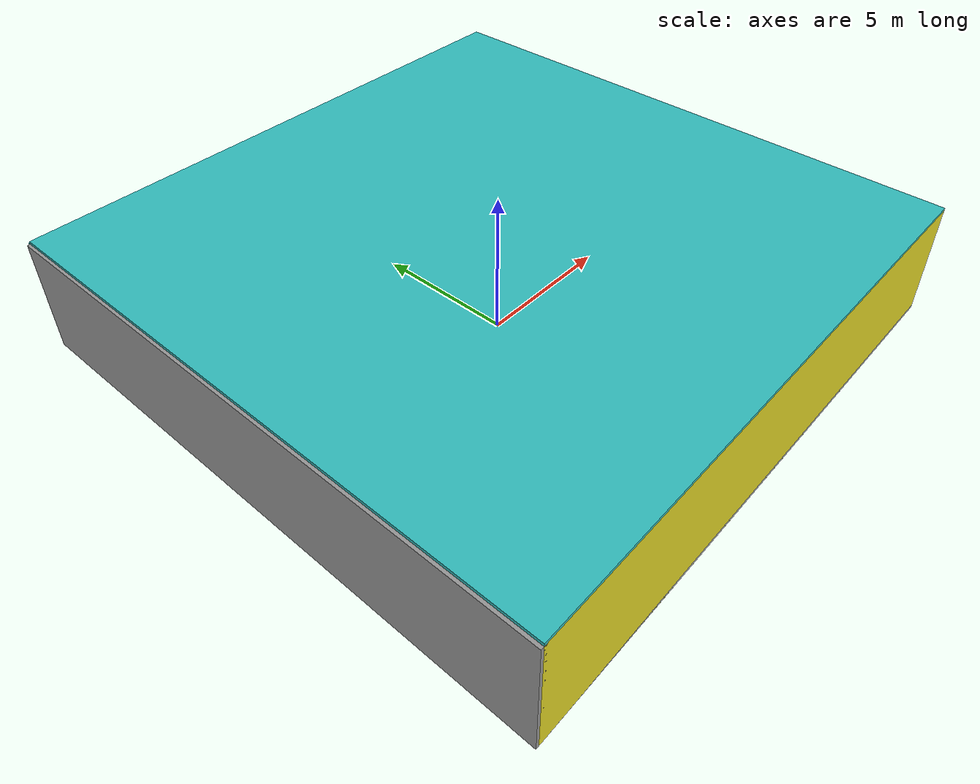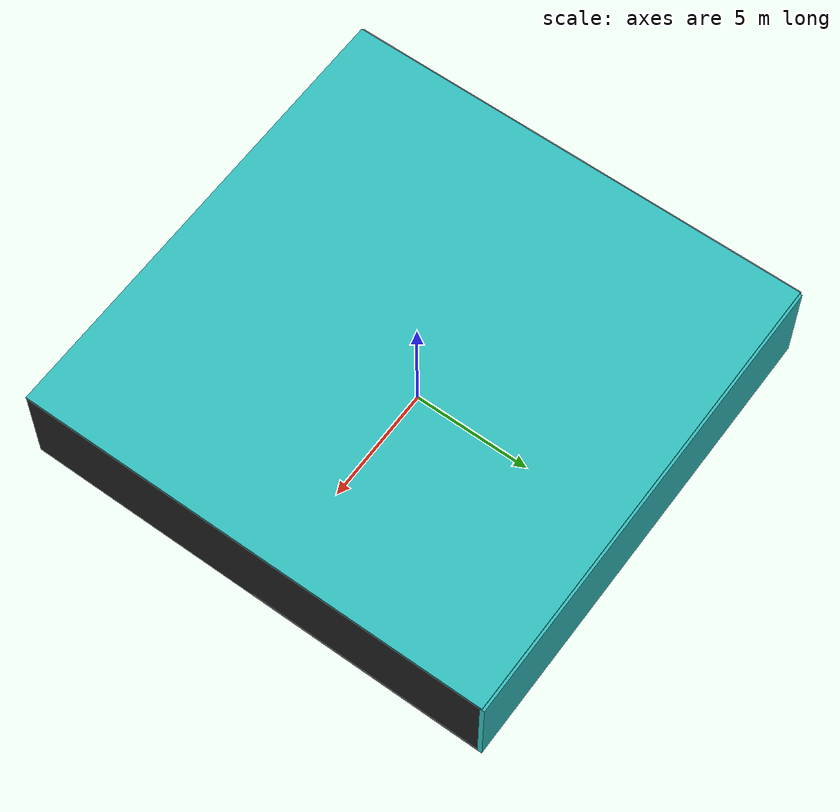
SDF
<sdf version="1.4">
 <world name="default">
  <physics type="ode">
   <max_step_size>0.001</max_step_size>
   <real_time_factor>1</real_time_factor>
   <real_time_update_rate>1000</real_time_update_rate>
   <gravity>0 0 -9.8</gravity>
  </physics>
  <scene><ambient>0.4 0.4 0.4 1</ambient><background>0.7 0.7 0.7 1</background><shadows>1</shadows></scene>
  <model name="Surrounding">
   <static>1</static>
   <link name="Ceiling">
    <collision name="Ceiling_Collision"><geometry><box><size>20 20 0.1</size></box></geometry></collision>
    <visual name="Ceiling_Visual">
     <geometry><box><size>20 20 0.1</size></box></geometry>
     <material>
      <script><uri>file://media/materials/scripts/gazebo.material</uri><name>Gazebo/TurquoiseGlow</name></script>
     </material>
    </visual>
    <pose>0 0 4.05 0 0 0</pose>
   </link>
   <link name="Wall_South">
    <collision name="Wall_South_Collision">
     <geometry><box><size>20 0 4</size></box></geometry>
     <pose>0 0 2 0 -0 0</pose>
    </collision>
    <visual name="Wall_South_Visual">
     <pose>0 0 2 0 -0 0</pose>
     <geometry><box><size>20 0 4</size></box></geometry>
     <material>
      <script><uri>file://media/materials/scripts/gazebo.material</uri><name>Gazebo/YellowGlow</name></script>
     </material>
    </visual>
    <velocity_decay><linear>0</linear><angular>0</angular></velocity_decay>
    <pose>0 -10 0 0 -0 0</pose>
   </link>
   <link name="Wall_East">
    <collision name="Wall_21_Collision">
     <geometry><box><size>20 0 4</size></box></geometry>
     <pose>0 0 2 0 -0 0</pose>
    </collision>
    <visual name="Wall_21_Visual">
     <pose>0 0 2 0 -0 0</pose>
     <geometry><box><size>20 0 4</size></box></geometry>
     <material>
      <script><uri>file://media/materials/scripts/gazebo.material</uri><name>Gazebo/Black</name></script>
     </material>
    </visual>
    <velocity_decay><linear>0</linear><angular>0</angular></velocity_decay>
    <pose>10 0 0 0 -0 1.5708</pose>
   </link>
   <link name="Wall_North">
    <collision name="Wall_22_Collision">
     <geometry><box><size>20 0.2 4</size></box></geometry>
     <pose>0 0 2 0 -0 0</pose>
    </collision>
    <visual name="Wall_22_Visual">
     <pose>0 0 2 0 -0 0</pose>
     <geometry><box><size>20 0.2 4</size></box></geometry>
     <material>
      <script><uri>file://media/materials/scripts/gazebo.material</uri><name>Gazebo/TurquoiseGlow</name></script>
     </material>
    </visual>
    <velocity_decay><linear>0</linear><angular>0</angular></velocity_decay>
    <pose>0 10 0 0 -0 0</pose>
   </link>
   <link name="Wall_West">
    <collision name="Wall_23_Collision">
     <geometry><box><size>20 0.2 4</size></box></geometry>
     <pose>0 0 2 0 -0 0</pose>
    </collision>
    <visual name="Wall_23_Visual">
     <pose>0 0 2 0 -0 0</pose>
     <geometry><box><size>20 0.2 4</size></box></geometry>
     <material>
      <script><uri>file://media/materials/scripts/gazebo.material</uri><name>Gazebo/Grey</name></script>
     </material>
    </visual>
    <velocity_decay><linear>0</linear><angular>0</angular></velocity_decay>
    <pose>-10 0 0 0 0 -1.5708</pose>
   </link>
   <link name="Ground_link">
    <collision name="collision">
     <pose>0 0 .05 0 -0 0</pose>
     <geometry><box><size>20 20 0.1</size></box></geometry>
    </collision>
    <visual name="visual">
     <pose>0 0 .05 0 -0 0</pose>
     <geometry><box><size>20 20 0.1</size></box></geometry>
     <material>
      <script><uri>file://media/materials/scripts/gazebo.material</uri><name>Gazebo/LightOff</name></script>
     </material>
    </visual>
   </link>
   <static>1</static>
  </model>
  <spherical_coordinates>
   <surface_model>EARTH_WGS84</surface_model>
   <latitude_deg>0</latitude_deg>
   <longitude_deg>0</longitude_deg>
   <elevation>0</elevation>
   <heading_deg>0</heading_deg>
  </spherical_coordinates>
  <light name="lightball_0" type="diffuse">
   <diffuse>0.8 0.8 0.8 1</diffuse>
   <specular>0.2 0.2 0.2 1</specular>
   <attenuation>
    <range>100</range>
    <constant>0.7</constant>
    <linear>0.01</linear>
    <quadratic>0.001</quadratic>
   </attenuation>
   <direction>-0.5 0.1 -0.9</direction>
   <pose>7.81227269444 1.5995242763 2.12187860287 0 0 0</pose>
  </light>
  <light name="lightball_1" type="diffuse">
   <diffuse>0.8 0.8 0.8 1</diffuse>
   <specular>0.2 0.2 0.2 1</specular>
   <attenuation>
    <range>100</range>
    <constant>0.7</constant>
    <linear>0.01</linear>
    <quadratic>0.001</quadratic>
   </attenuation>
   <direction>-0.5 0.1 -0.9</direction>
   <pose>-3.03453136944 8.11553198451 1.6408394868 0 0 0</pose>
  </light>
  <light name="lightball_2" type="diffuse">
   <diffuse>0.8 0.8 0.8 1</diffuse>
   <specular>0.2 0.2 0.2 1</specular>
   <attenuation>
    <range>100</range>
    <constant>0.7</constant>
    <linear>0.01</linear>
    <quadratic>0.001</quadratic>
   </attenuation>
   <direction>-0.5 0.1 -0.9</direction>
   <pose>8.34679474576 0.991523439872 1.74267015496 0 0 0</pose>
  </light>
  <include><uri>model://cabinet</uri><pose>-8.14033134547 2.1890807774 0 0 0 1.9107267873</pose></include>
  <include>
   <uri>model://construction_cone</uri>
   <pose>-3.84578653515 2.04027017001 0 0 0 2.52217514435</pose>
  </include>
  <include>
   <uri>model://construction_cone</uri>
   <pose>-1.70537489586 0.924250874717 0 0 0 0.544627579776</pose>
  </include>
  <include><uri>model://cabinet</uri><pose>4.32657932049 2.48019460962 0 0 0 2.54778348108</pose></include>
  <include><uri>model://table</uri><pose>6.39845129665 5.60137809237 0 0 0 1.47295870332</pose></include>
  <include>
   <uri>model://robocup_3Dsim_goal</uri>
   <pose>7.38650181209 6.94309141549 0 0 0 0.492511764175</pose>
  </include>
 </world>
</sdf>

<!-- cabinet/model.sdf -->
<sdf version="1.5">
  <model name="cabinet">
    <static>true</static>
    <link name="cabinet_bottom_plate">
      <inertial>
        <pose>0 0 -1 0 0 0</pose>
        <inertia>
          <ixx>2.050000</ixx>
          <ixy>0</ixy>
          <ixz>0</ixz>
          <iyy>2.050000</iyy>
          <iyz>0</iyz>
          <izz>2.050000</izz>
        </inertia>
        <mass>25.000000</mass>
      </inertial>
      <collision name="cabinet_bottom_plate_geom">
        <pose>0 0 0.010000 0 0 0</pose>
        <geometry>
          <box>
            <size>0.450000 0.450000 0.020000</size>
          </box>
        </geometry>
      </collision>
      <visual name="cabinet_bottom_plate_geom_visual">
        <pose>0 0 0.010000 0 0 0</pose>
        <geometry>
          <box>
            <size>0.450000 0.450000 0.020000</size>
          </box>
        </geometry>
        <material>
          <script>
            <uri>model://media/materials/scripts/gazebo.material</uri>
            <name>Gazebo/Wood</name>
          </script>
        </material>
      </visual>
      <collision name="cabinet_bottom_plate_geom_cabinet_back_plate">
        <pose>0.235000 0 0.510000 0 0 0</pose>
        <geometry>
          <box>
            <size>0.020000 0.450000 1.020000</size>
          </box>
        </geometry>
      </collision>
      <visual name="cabinet_bottom_plate_geom_cabinet_back_plate_visual">
        <pose>0.235000 0 0.510000 0 0 0</pose>
        <geometry>
          <box>
            <size>0.020000 0.450000 1.020000</size>
          </box>
        </geometry>
        <material>
          <script>
            <uri>model://media/materials/scripts/gazebo.material</uri>
            <name>Gazebo/Wood</name>
          </script>
        </material>
      </visual>
      <collision name="cabinet_bottom_plate_geom_cabinet_left_plate">
        <pose>0 0.235000 0.510000 0 0 0</pose>
        <geometry>
          <box>
            <size>0.450000 0.020000 1.020000</size>
          </box>
        </geometry>
      </collision>
      <visual name="cabinet_bottom_plate_geom_cabinet_left_plate_visual">
        <pose>0 0.235000 0.510000 0 0 0</pose>
        <geometry>
          <box>
            <size>0.450000 0.020000 1.020000</size>
          </box>
        </geometry>
        <material>
          <script>
            <uri>model://media/materials/scripts/gazebo.material</uri>
            <name>Gazebo/Wood</name>
          </script>
        </material>
      </visual>
      <collision name="cabinet_bottom_plate_geom_cabinet_middle_plate">
        <pose>0 0 0.510000 0 0 0</pose>
        <geometry>
          <box>
            <size>0.450000 0.450000 0.020000</size>
          </box>
        </geometry>
      </collision>
      <visual name="cabinet_bottom_plate_geom_cabinet_middle_plate_visual">
        <pose>0 0 0.510000 0 0 0</pose>
        <geometry>
          <box>
            <size>0.450000 0.450000 0.020000</size>
          </box>
        </geometry>
        <material>
          <script>
            <uri>model://media/materials/scripts/gazebo.material</uri>
            <name>Gazebo/Wood</name>
          </script>
        </material>
      </visual>
      <collision name="cabinet_bottom_plate_geom_cabinet_right_plate">
        <pose>0 -0.235000 0.510000 0 0 0</pose>
        <geometry>
          <box>
            <size>0.450000 0.020000 1.020000</size>
          </box>
        </geometry>
      </collision>
      <visual name="cabinet_bottom_plate_geom_cabinet_right_plate_visual">
        <pose>0 -0.235000 0.510000 0 0 0</pose>
        <geometry>
          <box>
            <size>0.450000 0.020000 1.020000</size>
          </box>
        </geometry>
        <material>
          <script>
            <uri>model://media/materials/scripts/gazebo.material</uri>
            <name>Gazebo/Wood</name>
          </script>
        </material>
      </visual>
      <collision name="cabinet_bottom_plate_geom_cabinet_top_plate">
        <pose>0 0 1.010000 0 0 0</pose>
        <geometry>
          <box>
            <size>0.450000 0.450000 0.020000</size>
          </box>
        </geometry>
      </collision>
      <visual name="cabinet_bottom_plate_geom_cabinet_top_plate_visual">
        <pose>0 0 1.010000 0 0 0</pose>
        <geometry>
          <box>
            <size>0.450000 0.450000 0.020000</size>
          </box>
        </geometry>
        <material>
          <script>
            <uri>model://media/materials/scripts/gazebo.material</uri>
            <name>Gazebo/Wood</name>
          </script>
        </material>
      </visual>
    </link>
  </model>
</sdf>

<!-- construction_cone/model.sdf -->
<sdf version="1.5">
  <model name="Construction Cone">
    <link name="link">
      <collision name="collision">
        <geometry>
          <mesh>
            <scale>10 10 10</scale>
            <uri>file://isr-testbed/construction_cone/meshes/construction_cone.dae</uri>
          </mesh>
        </geometry>
      </collision>
      <visual name="visual">
        <geometry>
          <mesh>
            <scale>10 10 10</scale>
            <uri>file://isr-testbed/construction_cone/meshes/construction_cone.dae</uri>
          </mesh>
        </geometry>
      </visual>
    </link>
  </model>
</sdf>

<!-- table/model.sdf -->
<sdf version="1.5">
  <model name="table">
    <static>true</static>
    <link name="link">
      <collision name="surface">
        <pose>0 0 1.0 0 0 0</pose>
        <geometry>
          <box>
            <size>1.5 0.8 0.03</size>
          </box>
        </geometry>
        <surface>
          <friction>
            <ode>
              <mu>0.6</mu>
              <mu2>0.6</mu2>
            </ode>
          </friction>
        </surface>
      </collision>
      <visual name="visual1">
        <pose>0 0 1.0 0 0 0</pose>
        <geometry>
          <box>
            <size>1.5 0.8 0.03</size>
          </box>
        </geometry>
        <material>
          <script>
            <uri>model://media/materials/scripts/gazebo.material</uri>
            <name>Gazebo/Wood</name>
          </script>
        </material>
      </visual>
      <collision name="front_left_leg">
        <pose>0.68 0.38 0.5 0 0 0</pose>
        <geometry>
          <cylinder>
            <radius>0.02</radius>
            <length>1.0</length>
          </cylinder>
        </geometry>
      </collision>
      <visual name="front_left_leg">
        <pose>0.68 0.38 0.5 0 0 0</pose>
        <geometry>
          <cylinder>
            <radius>0.02</radius>
            <length>1.0</length>
          </cylinder>
        </geometry>
        <material>
          <script>
            <uri>model://media/materials/scripts/gazebo.material</uri>
            <name>Gazebo/Grey</name>
          </script>
        </material>
      </visual>
      <collision name="front_right_leg">
        <pose>0.68 -0.38 0.5 0 0 0</pose>
        <geometry>
          <cylinder>
            <radius>0.02</radius>
            <length>1.0</length>
          </cylinder>
        </geometry>
      </collision>
      <visual name="front_right_leg">
        <pose>0.68 -0.38 0.5 0 0 0</pose>
        <geometry>
          <cylinder>
            <radius>0.02</radius>
            <length>1.0</length>
          </cylinder>
        </geometry>
        <material>
          <script>
            <uri>model://media/materials/scripts/gazebo.material</uri>
            <name>Gazebo/Grey</name>
          </script>
        </material>
      </visual>
      <collision name="back_right_leg">
        <pose>-0.68 -0.38 0.5 0 0 0</pose>
        <geometry>
          <cylinder>
            <radius>0.02</radius>
            <length>1.0</length>
          </cylinder>
        </geometry>
      </collision>
      <visual name="back_right_leg">
        <pose>-0.68 -0.38 0.5 0 0 0</pose>
        <geometry>
          <cylinder>
            <radius>0.02</radius>
            <length>1.0</length>
          </cylinder>
        </geometry>
        <material>
          <script>
            <uri>model://media/materials/scripts/gazebo.material</uri>
            <name>Gazebo/Grey</name>
          </script>
        </material>
      </visual>
      <collision name="back_left_leg">
        <pose>-0.68 0.38 0.5 0 0 0</pose>
        <geometry>
          <cylinder>
            <radius>0.02</radius>
            <length>1.0</length>
          </cylinder>
        </geometry>
      </collision>
      <visual name="back_left_leg">
        <pose>-0.68 0.38 0.5 0 0 0</pose>
        <geometry>
          <cylinder>
            <radius>0.02</radius>
            <length>1.0</length>
          </cylinder>
        </geometry>
        <material>
          <script>
            <uri>model://media/materials/scripts/gazebo.material</uri>
            <name>Gazebo/Grey</name>
          </script>
        </material>
      </visual>
    </link>
  </model>
</sdf>

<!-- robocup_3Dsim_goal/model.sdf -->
<sdf version="1.5">
  <model name="robocup_3d_goal">
    <static>true</static>
    <link name="left_post">
      <pose>0 1.05 0.45 0 0 0</pose>
      <collision name="collision">
        <geometry>
          <cylinder>
            <radius>0.05</radius>
            <length>0.9</length>
          </cylinder>
        </geometry>
      </collision>
      <visual name="visual">
        <geometry>
          <cylinder>
            <radius>0.05</radius>
            <length>0.9</length>
          </cylinder>
        </geometry>
        <material>
          <script>
            <uri>file://media/materials/scripts/gazebo.material</uri>
            <name>Gazebo/ZincYellow</name>
          </script>
        </material>
      </visual>
    </link>
    <link name="left_support_horiz_lower">
      <pose>0.30 1.05 0.01 0 0 0</pose>
      <collision name="collision">
        <geometry>
          <box>
            <size>0.50 0.02 0.02</size>
          </box>
        </geometry>
      </collision>
      <visual name="visual">
        <geometry>
          <box>
            <size>0.50 0.02 0.02</size>
          </box>
        </geometry>
        <material>
          <script>
            <uri>file://media/materials/scripts/gazebo.material</uri>
            <name>Gazebo/White</name>
          </script>
        </material>
      </visual>
    </link>
    <link name="left_support_horiz_upper">
      <pose>0.30 1.05 0.79 0 0 0</pose>
      <collision name="collision">
        <geometry>
          <box>
            <size>0.50 0.02 0.02</size>
          </box>
        </geometry>
      </collision>
      <visual name="visual">
        <geometry>
          <box>
            <size>0.50 0.02 0.02</size>
          </box>
        </geometry>
        <material>
          <script>
            <uri>file://media/materials/scripts/gazebo.material</uri>
            <name>Gazebo/White</name>
          </script>
        </material>
      </visual>
    </link>
    <link name="left_support_vertical">
      <pose>0.56 1.05 0.4 0 1.5708 0</pose>
      <collision name="collision">
        <geometry>
          <box>
            <size>0.80 0.02 0.02</size>
          </box>
        </geometry>
      </collision>
      <visual name="visual">
        <geometry>
          <box>
            <size>0.80 0.02 0.02</size>
          </box>
        </geometry>
        <material>
          <script>
            <uri>file://media/materials/scripts/gazebo.material</uri>
            <name>Gazebo/White</name>
          </script>
        </material>
      </visual>
    </link>
    <link name="right_support_horiz_lower">
      <pose>0.30 -1.05 0.01 0 0 0</pose>
      <collision name="collision">
        <geometry>
          <box>
            <size>0.50 0.02 0.02</size>
          </box>
        </geometry>
      </collision>
      <visual name="visual">
        <geometry>
          <box>
            <size>0.50 0.02 0.02</size>
          </box>
        </geometry>
        <material>
          <script>
            <uri>file://media/materials/scripts/gazebo.material</uri>
            <name>Gazebo/White</name>
          </script>
        </material>
      </visual>
    </link>
    <link name="right_support_horiz_upper">
      <pose>0.30 -1.05 0.79 0 0 0</pose>
      <collision name="collision">
        <geometry>
          <box>
            <size>0.50 0.02 0.02</size>
          </box>
        </geometry>
      </collision>
      <visual name="visual">
        <geometry>
          <box>
            <size>0.50 0.02 0.02</size>
          </box>
        </geometry>
        <material>
          <script>
            <uri>file://media/materials/scripts/gazebo.material</uri>
            <name>Gazebo/White</name>
          </script>
        </material>
      </visual>
    </link>
    <link name="right_support_vertical">
      <pose>0.56 -1.05 0.4 0 1.5708 0</pose>
      <collision name="collision">
        <geometry>
          <box>
            <size>0.80 0.02 0.02</size>
          </box>
        </geometry>
      </collision>
      <visual name="visual">
        <geometry>
          <box>
            <size>0.80 0.02 0.02</size>
          </box>
        </geometry>
        <material>
          <script>
            <uri>file://media/materials/scripts/gazebo.material</uri>
            <name>Gazebo/White</name>
          </script>
        </material>
      </visual>
    </link>
    <link name="center_support_horiz_lower">
      <pose>0.56 0 0.01 0 1.5708 0</pose>
      <collision name="collision">
        <geometry>
          <box>
            <size>0.02 2.08 0.02</size>
          </box>
        </geometry>
      </collision>
      <visual name="visual">
        <geometry>
          <box>
            <size>0.02 2.08 0.02</size>
          </box>
        </geometry>
        <material>
          <script>
            <uri>file://media/materials/scripts/gazebo.material</uri>
            <name>Gazebo/White</name>
          </script>
        </material>
      </visual>
    </link>
    <link name="center_support_horiz_upper">
      <pose>0.56 0 0.79 0 1.5708 0</pose>
      <collision name="collision">
        <geometry>
          <box>
            <size>0.02 2.08 0.02</size>
          </box>
        </geometry>
      </collision>
      <visual name="visual">
        <geometry>
          <box>
            <size>0.02 2.08 0.02</size>
          </box>
        </geometry>
        <material>
          <script>
            <uri>file://media/materials/scripts/gazebo.material</uri>
            <name>Gazebo/White</name>
          </script>
        </material>
      </visual>
    </link>
    <link name="right_post">
      <pose>0 -1.05 0.45 0 0 0</pose>
      <collision name="collision">
        <geometry>
          <cylinder>
            <radius>0.05</radius>
            <length>0.9</length>
          </cylinder>
        </geometry>
      </collision>
      <visual name="visual">
        <geometry>
          <cylinder>
            <radius>0.05</radius>
            <length>0.9</length>
          </cylinder>
        </geometry>
        <material>
          <script>
            <uri>file://media/materials/scripts/gazebo.material</uri>
            <name>Gazebo/ZincYellow</name>
          </script>
        </material>
      </visual>
    </link>
    <link name="crossbar">
      <pose>0 0 0.85 1.57 1.57 0</pose>
      <collision name="collision">
        <geometry>
          <cylinder>
            <radius>0.05</radius>
            <length>2.0</length>
          </cylinder>
        </geometry>
      </collision>
      <visual name="visual">
        <geometry>
          <cylinder>
            <radius>0.05</radius>
            <length>2.0</length>
          </cylinder>
        </geometry>
        <material>
          <script>
            <uri>file://media/materials/scripts/gazebo.material</uri>
            <name>Gazebo/ZincYellow</name>
          </script>
        </material>
      </visual>
    </link>
    <link name="center_net">
      <pose>0.56 0 0.40 0 0 0</pose>
      <collision name="collision">
        <geometry>
          <box>
            <size>0.01 2.1 0.80</size>
          </box>
        </geometry>
      </collision>
      <visual name="visual">
        <geometry>
          <box>
            <size>0.01 2.1 0.80</size>
          </box>
        </geometry>
        <material>
          <script>
            <uri>model://../model_source/models/robocup09_spl_field/materials/scripts/</uri>
            <uri>model://../model_source/models/robocup09_spl_field/materials/textures/</uri>
            <name>RoboCup/Net</name>
          </script>
        </material>
      </visual>
    </link>
    <link name="left_net">
      <pose>0.30 1.05 0.40 0 0 0</pose>
      <collision name="collision">
        <geometry>
          <box>
            <size>0.50 0.01 0.76</size>
          </box>
        </geometry>
      </collision>
      <visual name="visual">
        <geometry>
          <box>
            <size>0.50 0.01 0.76</size>
          </box>
        </geometry>
        <material>
          <script>
            <uri>model://../model_source/models/robocup09_spl_field/materials/scripts/</uri>
            <uri>model://../model_source/models/robocup09_spl_field/materials/textures/</uri>
            <name>RoboCup/Net</name>
          </script>
        </material>
      </visual>
    </link>
    <link name="right_net">
      <pose>0.30 -1.05 0.40 0 0 0</pose>
      <collision name="collision">
        <geometry>
          <box>
            <size>0.50 0.01 0.76</size>
          </box>
        </geometry>
      </collision>
      <visual name="visual">
        <geometry>
          <box>
            <size>0.50 0.01 0.76</size>
          </box>
        </geometry>
        <material>
          <script>
            <uri>model://../model_source/models/robocup09_spl_field/materials/scripts/</uri>
            <uri>model://../model_source/models/robocup09_spl_field/materials/textures/</uri>
            <name>RoboCup/Net</name>
          </script>
        </material>
      </visual>
    </link>
  </model>
</sdf>
